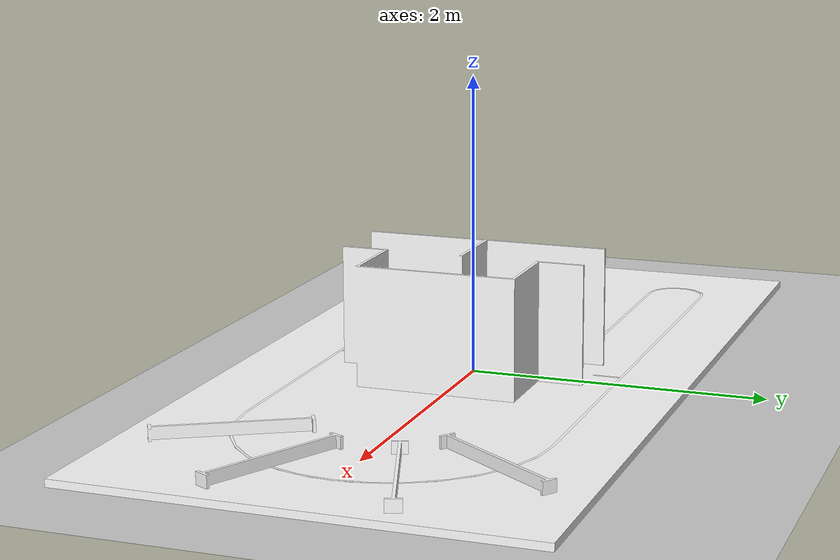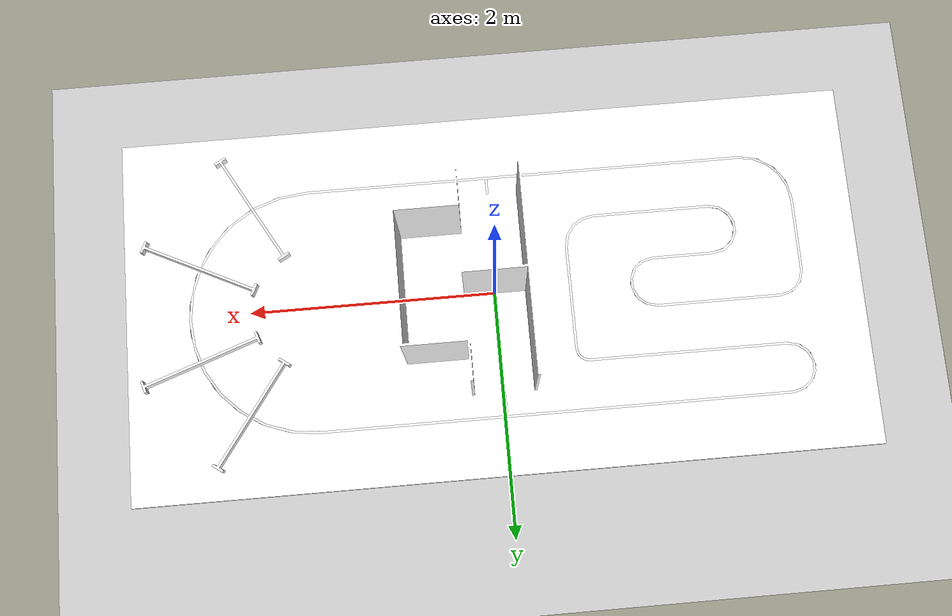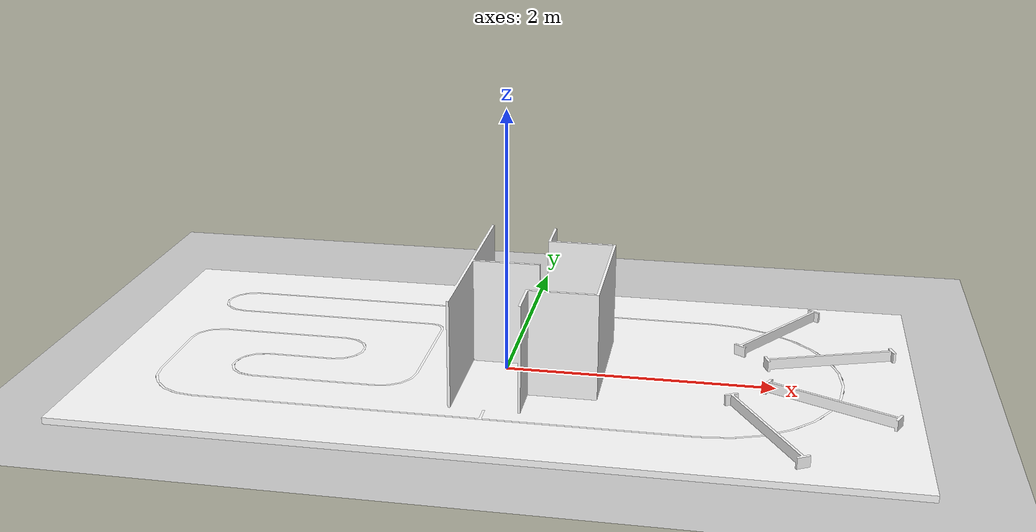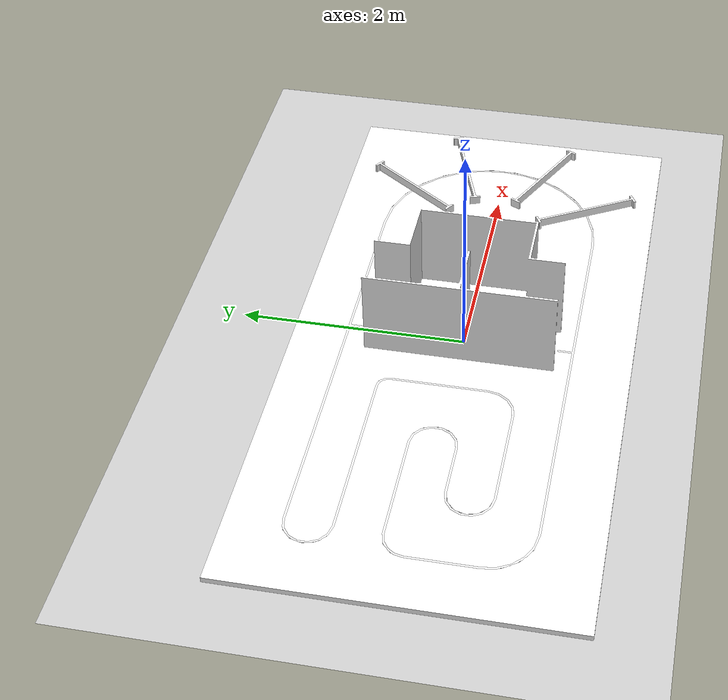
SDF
<sdf version="1.6">
 <world name="src23_world">
  <physics name="default_physics" default="0" type="ode">
   <max_step_size>0.001</max_step_size>
   <real_time_factor>1</real_time_factor>
   <real_time_update_rate>1000</real_time_update_rate>
   <ode>
    <solver>
     <type>quick</type>
     <iters>100</iters>
     <sor>1.0</sor>
     <use_dynamic_moi_rescaling>false</use_dynamic_moi_rescaling>
    </solver>
   </ode>
  </physics>
  <include><uri>model://ground_plane</uri></include>
  <include><uri>model://sun</uri></include>
  <include><uri>model://src_map</uri><uri>model://src_dot_line_map</uri></include>
 </world>
</sdf>

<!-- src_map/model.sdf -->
<sdf version='1.7'>
  <model name='src_map'>
    <link name='base_link'>
      <inertial>
        <pose>0.02622 -0.000728 0.059316 0 -0 0</pose>
        <mass>959.74</mass>
        <inertia>
          <ixx>697.32</ixx>
          <ixy>1.0435</ixy>
          <ixz>-1.4803</ixz>
          <iyy>2669.6</iyy>
          <iyz>0.44075</iyz>
          <izz>3334.9</izz>
        </inertia>
      </inertial>
      <collision name='base_link_collision'>
        <pose>0 0 0 0 -0 0</pose>
        <geometry>
          <mesh>
            <scale>1 1 1</scale>
            <uri>model://src_map/meshes/base_link.STL</uri>
          </mesh>
        </geometry>
      </collision>
      <visual name='base_link_visual'>
        <pose>0 0 0 0 -0 0</pose>
        <geometry>
          <mesh>
            <scale>1 1 1</scale>
            <uri>model://src_map/meshes/base_link.STL</uri>
          </mesh>
        </geometry>

        <material>
        <ambient>130 0 0 1</ambient>
        <diffuse>1 1 1 1</diffuse>
        <emissive>0 0 0 1</emissive>
        <specular>0 0 0 0</specular>
        </material>

      </visual>
    </link>
    <joint name='hurdle1' type='fixed'>
      <pose relative_to='base_link'>2.0176 0.84026 0.09 0 -0 0</pose>
      <parent>base_link</parent>
      <child>hurdle1_Link</child>
    </joint>
    <link name='hurdle1_Link'>
      <pose relative_to='hurdle1'>0 0 0 0 -0 0</pose>
      <inertial>
        <pose>-0.008173 0.005762 -0 0 -0 0</pose>
        <mass>1.856</mass>
        <inertia>
          <ixx>0.131231</ixx>
          <ixy>-0.0915897</ixy>
          <ixz>2.717e-17</ixz>
          <iyy>0.0658742</iyy>
          <iyz>3.96064e-17</iyz>
          <izz>0.195125</izz>
        </inertia>
      </inertial>
      <collision name='hurdle1_Link_collision'>
        <pose>0 0 0 0 -0 0</pose>
        <geometry>
          <mesh>
            <scale>1 1 1</scale>
            <uri>model://src_map/meshes/hurdle1_Link.STL</uri>
          </mesh>
        </geometry>
      </collision>
      <visual name='hurdle1_Link_visual'>
        <pose>0 0 0 0 -0 0</pose>
        <geometry>
          <mesh>
            <scale>1 1 1</scale>
            <uri>model://src_map/meshes/hurdle1_Link.STL</uri>
          </mesh>
        </geometry>

        <material>
        <ambient>255 255 0 1</ambient>
        <diffuse>1 1 1 1</diffuse>
        <emissive>0 0 0 1</emissive>
        <specular>0 0 0 0</specular>
        </material>

      </visual>
    </link>
    <joint name='hurdle2' type='fixed'>
      <pose relative_to='base_link'>2.3961 0.37985 0.09 0 -0 0</pose>
      <parent>base_link</parent>
      <child>hurdle2_Link</child>
    </joint>
    <link name='hurdle2_Link'>
      <pose relative_to='hurdle2'>0 0 0 0 -0 0</pose>
      <inertial>
        <pose>-0.003315 0.009435 0 0 -0 0</pose>
        <mass>1.856</mass>
        <inertia>
          <ixx>0.022678</ixx>
          <ixy>-0.060824</ixy>
          <ixz>3.0419e-18</ixz>
          <iyy>0.17443</iyy>
          <iyz>3.0406e-18</iyz>
          <izz>0.19513</izz>
        </inertia>
      </inertial>
      <collision name='hurdle2_Link_collision'>
        <pose>0 0 0 0 -0 0</pose>
        <geometry>
          <mesh>
            <scale>1 1 1</scale>
            <uri>model://src_map/meshes/hurdle2_Link.STL</uri>
          </mesh>
        </geometry>
      </collision>
      <visual name='hurdle2_Link_visual'>
        <pose>0 0 0 0 -0 0</pose>
        <geometry>
          <mesh>
            <scale>1 1 1</scale>
            <uri>model://src_map/meshes/hurdle2_Link.STL</uri>
          </mesh>
        </geometry>

        <material>
        <ambient>255 255 0 1 1</ambient>
        <diffuse>1 1 1 1</diffuse>
        <emissive>0 0 0 1</emissive>
        <specular>0 0 0 0</specular>
        </material>

      </visual>
    </link>
    <joint name='hurdle3' type='fixed'>
      <pose relative_to='base_link'>2.3776 -0.39466 0.09 0 -0 0</pose>
      <parent>base_link</parent>
      <child>hurdle3_Link</child>
    </joint>
    <link name='hurdle3_Link'>
      <pose relative_to='hurdle3'>0 0 0 0 -0 0</pose>
      <inertial>
        <pose>0.004393 0.008984 -0 0 -0 0</pose>
        <mass>1.856</mass>
        <inertia>
          <ixx>0.038836</ixx>
          <ixy>0.07675</ixy>
          <ixz>-4.7401e-17</ixz>
          <iyy>0.15827</iyy>
          <iyz>2.0623e-17</iyz>
          <izz>0.19513</izz>
        </inertia>
      </inertial>
      <collision name='hurdle3_Link_collision'>
        <pose>0 0 0 0 -0 0</pose>
        <geometry>
          <mesh>
            <scale>1 1 1</scale>
            <uri>model://src_map/meshes/hurdle3_Link.STL</uri>
          </mesh>
        </geometry>
      </collision>
      <visual name='hurdle3_Link_visual'>
        <pose>0 0 0 0 -0 0</pose>
        <geometry>
          <mesh>
            <scale>1 1 1</scale>
            <uri>model://src_map/meshes/hurdle3_Link.STL</uri>
          </mesh>
        </geometry>

        <material>
        <ambient>255 255 0 1 1</ambient>
        <diffuse>1 1 1 1</diffuse>
        <emissive>0 0 0 1</emissive>
        <specular>0 0 0 0</specular>
        </material>

      </visual>
    </link>
    <joint name='hurdle4' type='fixed'>
      <pose relative_to='base_link'>1.9201 -0.85934 0.09 0 -0 0</pose>
      <parent>base_link</parent>
      <child>hurdle4_Link</child>
    </joint>
    <link name='hurdle4_Link'>
      <pose relative_to='hurdle4'>0 0 0 0 -0 0</pose>
      <inertial>
        <pose>0.008696 0.004938 0 0 -0 0</pose>
        <mass>1.856</mass>
        <inertia>
          <ixx>0.148365</ixx>
          <ixy>0.083518</ixy>
          <ixz>-1.38832e-17</ixz>
          <iyy>0.04874</iyy>
          <iyz>2.57793e-17</iyz>
          <izz>0.195125</izz>
        </inertia>
      </inertial>
      <collision name='hurdle4_Link_collision'>
        <pose>0 0 0 0 -0 0</pose>
        <geometry>
          <mesh>
            <scale>1 1 1</scale>
            <uri>model://src_map/meshes/hurdle4_Link.STL</uri>
          </mesh>
        </geometry>
      </collision>
      <visual name='hurdle4_Link_visual'>
        <pose>0 0 0 0 -0 0</pose>
        <geometry>
          <mesh>
            <scale>1 1 1</scale>
            <uri>model://src_map/meshes/hurdle4_Link.STL</uri>
          </mesh>
        </geometry>

        <material>
        <ambient>255 255 0 1 1</ambient>
        <diffuse>1 1 1 1</diffuse>
        <emissive>0 0 0 1</emissive>
        <specular>0 0 0 0</specular>
        </material>

      </visual>
    </link>
    <joint name='line' type='fixed'>
      <pose relative_to='base_link'>-0.53783 0.039373 0.05 0 -0 0</pose>
      <parent>base_link</parent>
      <child>line_Link</child>
    </joint>
    <link name='line_Link'>
      <pose relative_to='line'>0 0 0 0 -0 0</pose>
      <inertial>
        <pose>-0 0 -0.025 0 -0 0</pose>
        <mass>17.7562</mass>
        <inertia>
          <ixx>10.3552</ixx>
          <ixy>0.247521</ixy>
          <ixz>4.44434e-16</ixz>
          <iyy>40.9733</iyy>
          <iyz>1.01307e-17</iyz>
          <izz>51.3211</izz>
        </inertia>
      </inertial>
      <collision name='line_Link_collision'>
        <pose>0 0 0 0 -0 0</pose>
        <geometry>
          <mesh>
            <scale>1 1 1</scale>
            <uri>model://src_map/meshes/line_Link.STL</uri>
          </mesh>
        </geometry>
      </collision>
      <visual name='line_Link_visual'>
        <pose>0 0 0 0 -0 0</pose>
        <geometry>
          <mesh>
            <scale>1 1 1</scale>
            <uri>model://src_map/meshes/line_Link.STL</uri>
          </mesh>
        </geometry>

        <material>
        <ambient>255 255 255 1</ambient>
        <diffuse>1 1 1 1</diffuse>
        <emissive>0 0 0 1</emissive>
        <specular>0 0 0 0</specular>
        </material>

      </visual>
    </link>
  </model>
</sdf>
